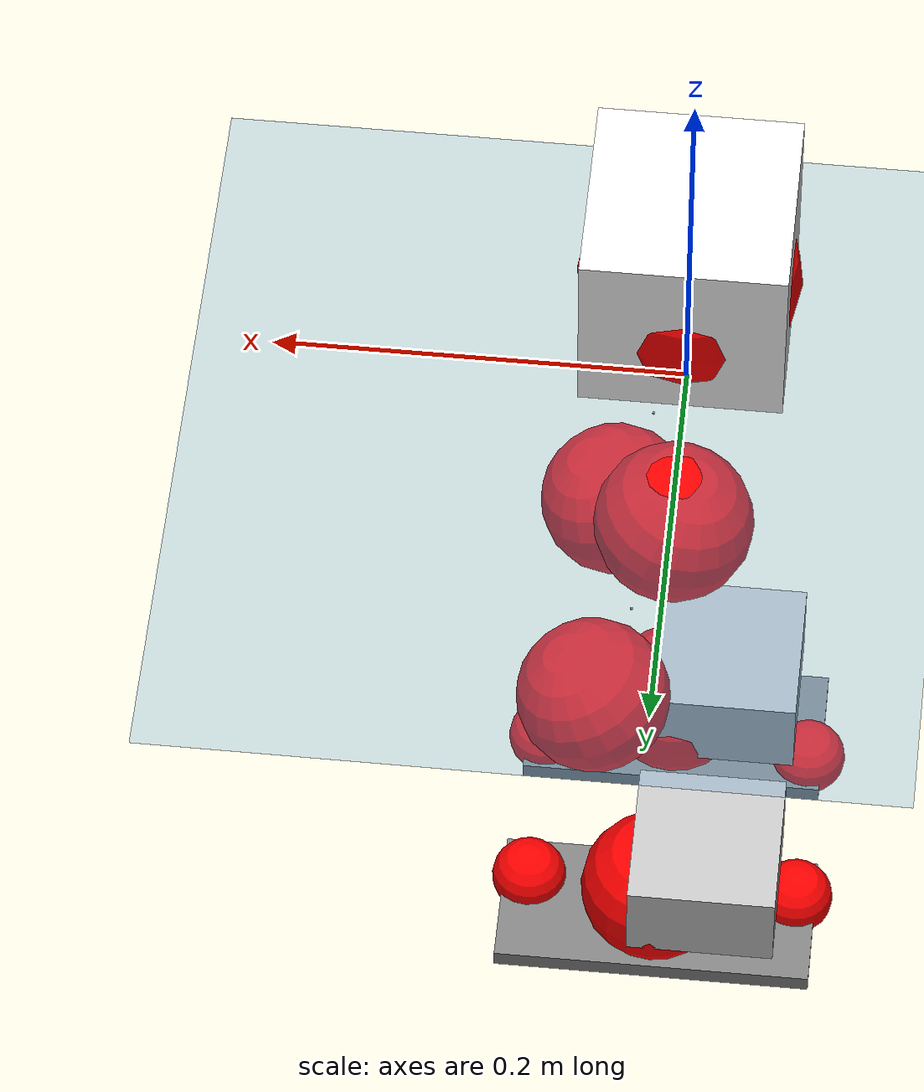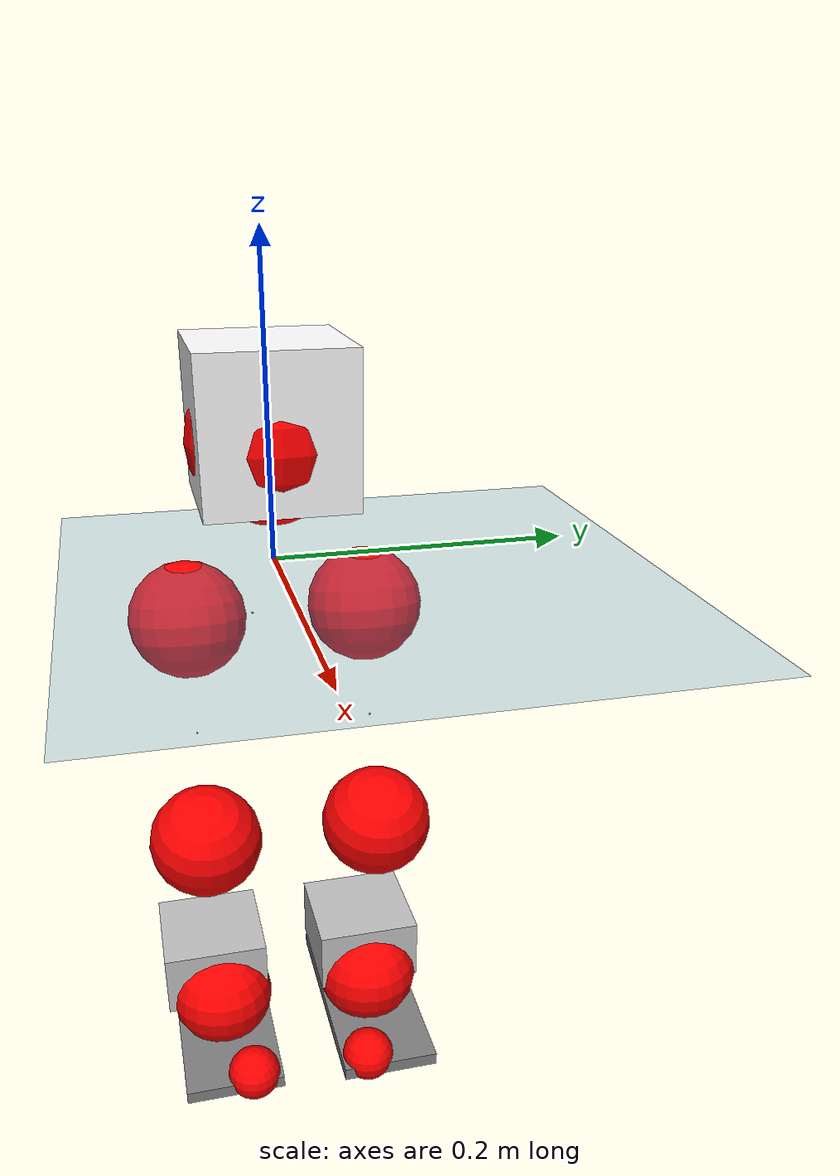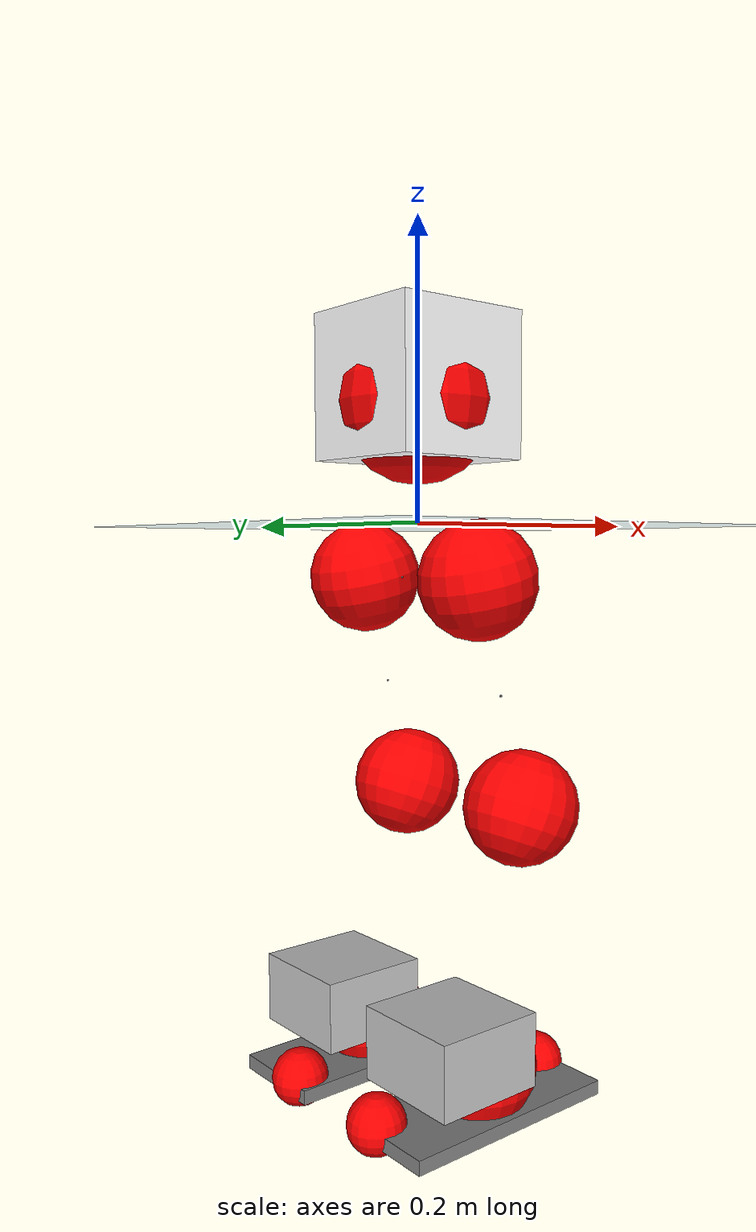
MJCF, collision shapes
<mujoco model="pi_12dof_release_v1">
  <compiler angle="radian" assetdir="assets" balanceinertia="true" inertiafromgeom="false"/>

  <option timestep="0.005" density="1.2" viscosity="2e-05"/>

  <size nkey="1"/>

  <visual>
    <quality shadowsize="8192"/>
    <map shadowclip="0.5"/>
  </visual>

  <default>
    <default class="/">
      <joint armature="0.01" damping="0.01" frictionloss="0.01"/>
      <geom contype="0" conaffinity="0" group="1" solref="-1000 -80"/>
      <site size="0.01 0.005 0.005" group="5"/>
      <general forcelimited="true" biastype="affine" gainprm="20" biasprm="0 -20 -0.5"/>
      <default class="foot">
        <geom size="0.0845 0.036 0.005" type="box" condim="6" group="4" priority="1" friction="0.9 0.2 0.2" solimp="0.015 1 0.005"/>
      </default>
      <default class="reward_collision_sphere">
        <geom group="5" rgba="1 0 0 1"/>
      </default>
    </default>
  </default>

  <asset>
    <texture type="skybox" colorspace="auto" name="//unnamed_texture_0" builtin="gradient" rgb1="0.95 0.95 0.95" rgb2="0.95 0.95 0.95" width="100" height="600"/>
    <texture type="2d" colorspace="auto" name="texplane" builtin="checker" rgb1="0.345 0.575 0.748" rgb2="0.345 0.575 0.748" markrgb="1 1 1" width="512" height="512"/>
    <material name="MatPlane" class="/" texture="texplane" texuniform="true" texrepeat="2 2" specular="0.9"/>
    <mesh name="baselink_1" class="/" file="baselink_1.STL"/>
    <mesh name="r_hip_pitch_link" class="/" file="r_hip_pitch_link.STL"/>
    <mesh name="r_hip_roll_link" class="/" file="r_hip_roll_link.STL"/>
    <mesh name="r_thigh_link" class="/" file="r_thigh_link.STL"/>
    <mesh name="r_calf_link" class="/" file="r_calf_link.STL"/>
    <mesh name="r_ankle_pitch_link" class="/" file="r_ankle_pitch_link.STL"/>
    <mesh name="r_ankle_roll_link" class="/" file="r_ankle_roll_link.STL"/>
    <mesh name="l_hip_pitch_link" class="/" file="l_hip_pitch_link.STL"/>
    <mesh name="l_hip_roll_link" class="/" file="l_hip_roll_link.STL"/>
    <mesh name="l_thigh_link" class="/" file="l_thigh_link.STL"/>
    <mesh name="l_calf_link" class="/" file="l_calf_link.STL"/>
    <mesh name="l_ankle_pitch_link" class="/" file="l_ankle_pitch_link.STL"/>
    <mesh name="l_ankle_roll_link" class="/" file="l_ankle_roll_link.STL"/>
  </asset>

  <worldbody>
    <geom name="floor" class="/" size="100 100 0.125" type="plane" group="0" material="MatPlane"/>
    <light name="toplight_shadow" class="/" pos="0 0 5" dir="0.0990148 0.0990148 -0.990148" type="directional" ambient="0.04 0.04 0.04" diffuse="0.55 0.55 0.55" specular="0.12 0.12 0.12"/>
    <light name="toplight_fill" class="/" pos="0 0 5" dir="0.0990148 0.0990148 -0.990148" type="directional" castshadow="false" ambient="0.04 0.04 0.04" diffuse="0.3 0.3 0.3" specular="0.08 0.08 0.08"/>
    <body name="trunk" pos="-0.000132344 0.000803333 4.00809e-05" quat="1 0.000238087 -8.80112e-05 0.000303325">
      <inertial pos="0.00328144 -0.001642 0.0445579" quat="0.692523 0.0073569 0.0104739 0.721282" mass="1.93229" diaginertia="0.0112335 0.00218646 0.00719639"/>
      <joint name="//unnamed_joint_0" type="free"/>
      <geom name="//unnamed_geom_1" class="/" type="mesh" density="0" rgba="1 1 1 1" mesh="baselink_1"/>
      <geom name="//unnamed_geom_2" class="/" size="0.0484353 0.0484353 0.0484353" pos="0 0 0.089492" type="box" rgba="1 1 1 1"/>
      <geom name="//unnamed_geom_3" class="reward_collision_sphere" size="0.0532789" pos="0 0 0.0783055"/>
      <site name="imu" class="/" pos="-0.000244707 -0.0015102 -0.00151874" size="0.00968707"/>
      <camera name="track" class="/" pos="0 -1.50959 0" quat="0.707107 0.707107 0 0" mode="trackcom"/>
      <camera name="ego_camera" class="/" pos="0.0774506 0 0.201357" quat="-0.5 -0.5 0.5 0.5"/>
      <body name="r_hip_pitch_link" pos="0.000521487 -0.0166314 -0.0365395" quat="0.992193 -3.31971e-05 -0.124715 -3.08658e-05">
        <inertial pos="0.000898387 -0.0425555 -0.000199286" quat="-0.0199531 0.710155 -0.0316816 0.703049" mass="0.337948" diaginertia="0.000128668 2.44052e-05 0.000146966"/>
        <joint name="r_hip_pitch_joint" class="/" pos="0 0 0" axis="0.00432545 -0.999985 0.00322949" range="-1.76574 1.2317" armature="0.00979038" damping="0.0160482" frictionloss="0.00998113"/>
        <geom name="//unnamed_geom_4" class="/" type="mesh" density="0" rgba="0.75294 0.75294 0.75294 1" mesh="r_hip_pitch_link"/>
        <geom name="//unnamed_geom_5" class="/" size="0.000484353 0.000484353 0.000484353" type="box" rgba="0.75294 0.75294 0.75294 1"/>
        <body name="r_hip_roll_link" pos="0.000196339 -0.0429603 -0.000585577" quat="1 -0.000383209 0.00010704 0.000221733">
          <inertial pos="-0.00081594 0.000805712 -0.0685761" quat="0.706883 -0.0808299 -0.0839461 0.697665" mass="0.350063" diaginertia="0.00039245 6.90886e-05 0.000225724"/>
          <joint name="r_hip_roll_joint" class="/" pos="0 0 0" axis="-0.999993 0.00242209 -0.00267751" range="-0.121223 0.49434" armature="0.00947715" damping="0.00691372" frictionloss="0.00967614"/>
          <geom name="//unnamed_geom_6" class="/" type="mesh" density="0" rgba="0.75294 0.75294 0.75294 1" mesh="r_hip_roll_link"/>
          <geom name="//unnamed_geom_7" class="/" size="0.000484353 0.000484353 0.000484353" type="box" rgba="0.75294 0.75294 0.75294 1"/>
          <geom name="//unnamed_geom_8" class="reward_collision_sphere" size="0.0387483"/>
          <body name="r_thigh_link" pos="-8.7789e-05 -0.00110272 -0.0772094" quat="1 5.01062e-05 -5.79619e-05 -0.000206154">
            <inertial pos="0.000228955 0.00126038 -0.0529551" quat="0.738052 0.674742 -0.0012093 2.44293e-05" mass="0.103275" diaginertia="0.000148581 2.36057e-05 0.000102516"/>
            <joint name="r_thigh_joint" class="/" pos="0 0 0" axis="-0.00182118 0.000749241 -0.999998" range="-0.319143 0.574864" armature="0.00961518" damping="0" frictionloss="0.0100713"/>
            <geom name="//unnamed_geom_9" class="/" type="mesh" density="0" rgba="0.75294 0.75294 0.75294 1" mesh="r_thigh_link"/>
            <geom name="//unnamed_geom_10" class="/" size="0.000484353 0.000484353 0.000484353" type="box" rgba="0.75294 0.75294 0.75294 1"/>
            <body name="r_calf_link" pos="-0.00151942 -0.000743535 -0.077785" quat="0.947625 -1.44098e-05 0.319385 0.000210222">
              <inertial pos="-0.000943249 -0.00142709 -0.0776367" quat="0.99998 -0.00297058 0.00191704 0.00518256" mass="0.74424" diaginertia="0.00417287 0.000857835 0.000304858"/>
              <joint name="r_calf_joint" class="/" pos="0 0 0" axis="-0.00808204 -0.999967 0.000827589" range="-1.63214 0.637824" armature="0.00969574" damping="0.0136672" frictionloss="0.00990378"/>
              <geom name="//unnamed_geom_11" class="/" type="mesh" density="0" rgba="0.75294 0.75294 0.75294 1" mesh="r_calf_link"/>
              <geom name="//unnamed_geom_12" class="/" size="0.000484353 0.000484353 0.000484353" type="box" rgba="0.75294 0.75294 0.75294 1"/>
              <geom name="//unnamed_geom_13" class="reward_collision_sphere" size="0.0387483"/>
              <body name="r_ankle_pitch_link" pos="0.00109759 0.00109476 -0.157462" quat="0.980072 -7.16932e-05 -0.198642 -4.14028e-06">
                <inertial pos="0.00417319 0.00362001 0.000402318" quat="0.00302788 0.70738 -0.00352358 0.706818" mass="0.160194" diaginertia="0.000365198 5.43693e-05 0.000210024"/>
                <joint name="r_ankle_pitch_joint" class="/" pos="0 0 0" axis="9.59363e-05 -0.999999 0.00105255" stiffness="0.000467585" range="-1.28282 0.489901" armature="0.00966587" damping="0.00995521" frictionloss="0.00981482"/>
                <geom name="//unnamed_geom_14" class="/" type="mesh" density="0" rgba="0.75294 0.75294 0.75294 1" mesh="r_ankle_pitch_link"/>
                <geom name="//unnamed_geom_15" class="/" size="0.0377796 0.0387483 0.0242177" type="box" rgba="0.75294 0.75294 0.75294 1"/>
                <body name="r_ankle_roll_link" pos="0.0788407 0.00352495 0.000675914" quat="1 7.61832e-05 -0.000133575 -2.12176e-05">
                  <inertial pos="-0.0237285 -0.00079185 -0.0163101" quat="0.558975 0.432208 0.436104 0.557276" mass="0.478134" diaginertia="0.00135523 0.000253851 0.000508642"/>
                  <joint name="r_ankle_roll_joint" class="/" pos="0 0 0" axis="-0.999982 0.00578825 -0.00184983" range="-0.128004 0.145696" armature="0.00974378" damping="0.00275852" frictionloss="0.00965226"/>
                  <geom name="//unnamed_geom_16" class="/" type="mesh" density="0" rgba="0.75294 0.75294 0.75294 1" mesh="r_ankle_roll_link"/>
                  <geom name="//unnamed_geom_17" class="/" type="mesh" rgba="0.75294 0.75294 0.75294 1" mesh="r_ankle_roll_link"/>
                  <geom name="right_foot" class="foot" size="0.0782842 0.0361184 0.00471324" pos="-0.0526664 0 -0.0492206"/>
                  <geom name="//unnamed_geom_19" class="reward_collision_sphere" size="0.0387483" pos="-0.0516337 0 -0.022373"/>
                  <geom name="//unnamed_geom_20" class="reward_collision_sphere" size="0.0193741" pos="0.0154901 0.0150959 -0.044746"/>
                  <geom name="//unnamed_geom_21" class="reward_collision_sphere" size="0.0193741" pos="-0.123921 0.0150959 -0.044746"/>
                  <site name="right_foot" class="foot" pos="-0.0526664 0 -0.0492206" size="0.00968707"/>
                </body>
              </body>
            </body>
          </body>
        </body>
      </body>
      <body name="l_hip_pitch_link" pos="4.97826e-05 0.0165149 -0.0364843" quat="0.992203 0.000132442 -0.124635 -0.000224196">
        <inertial pos="0.00147089 0.0402727 -0.00115739" quat="-0.0375898 0.704418 0.0294983 0.708176" mass="0.351133" diaginertia="0.000150715 2.61922e-05 0.000175469"/>
        <joint name="l_hip_pitch_joint" class="/" pos="0 0 0" axis="0.000320186 1 -0.000808484" range="-1.24107 1.75474" armature="0.00980728" damping="0.0112868" frictionloss="0.00958586"/>
        <geom name="//unnamed_geom_22" class="/" type="mesh" density="0" rgba="0.75294 0.75294 0.75294 1" mesh="l_hip_pitch_link"/>
        <geom name="//unnamed_geom_23" class="/" size="0.000484353 0.000484353 0.000484353" type="box" rgba="0.75294 0.75294 0.75294 1"/>
        <body name="l_hip_roll_link" pos="0.000324063 0.0433941 -0.000410804" quat="1 0.00021523 2.54892e-05 0.000254398">
          <inertial pos="-0.000703615 0.00122305 -0.0683726" quat="0.698377 -0.0733562 -0.0780729 0.707667" mass="0.348781" diaginertia="0.000395472 6.71494e-05 0.000225559"/>
          <joint name="l_hip_roll_joint" class="/" pos="0 0 0" axis="-0.999987 0.00270361 -0.00423679" range="-0.499192 0.11505" armature="0.0101671" damping="0.00390963" frictionloss="0.010138"/>
          <geom name="//unnamed_geom_24" class="/" type="mesh" density="0" rgba="0.75294 0.75294 0.75294 1" mesh="l_hip_roll_link"/>
          <geom name="//unnamed_geom_25" class="/" size="0.000484353 0.000484353 0.000484353" type="box" rgba="0.75294 0.75294 0.75294 1"/>
          <geom name="//unnamed_geom_26" class="reward_collision_sphere" size="0.0387483"/>
          <body name="l_thigh_link" pos="0.00013775 -0.00069485 -0.0780141" quat="1 -3.95181e-05 -0.000278019 0.000310089">
            <inertial pos="0.000441486 -0.00170338 -0.0539709" quat="0.675793 0.737091 -0.000390815 0.00111365" mass="0.103087" diaginertia="0.000148865 2.35035e-05 0.000102574"/>
            <joint name="l_thigh_joint" class="/" pos="0 0 0" axis="-0.000490193 7.97573e-05 -1" range="-0.602382 0.303581" armature="0.0101599" damping="0.00115551" frictionloss="0.00961309"/>
            <geom name="//unnamed_geom_27" class="/" type="mesh" density="0" rgba="0.75294 0.75294 0.75294 1" mesh="l_thigh_link"/>
            <geom name="//unnamed_geom_28" class="/" size="0.000484353 0.000484353 0.000484353" type="box" rgba="0.75294 0.75294 0.75294 1"/>
            <body name="l_calf_link" pos="-0.00125342 0.000185795 -0.0786127" quat="0.947666 -0.000620446 0.319263 0.000308203">
              <inertial pos="0.000413844 0.00265382 -0.0784878" quat="0.999983 0.00350285 -0.00109855 0.00453384" mass="0.746709" diaginertia="0.00417887 0.000866438 0.000314348"/>
              <joint name="l_calf_joint" class="/" pos="0 0 0" axis="0.00136068 0.999996 -0.00249188" range="-0.649627 1.65595" armature="0.0101342" damping="0.0089362" frictionloss="0.00974894"/>
              <geom name="//unnamed_geom_29" class="/" type="mesh" density="0" rgba="0.75294 0.75294 0.75294 1" mesh="l_calf_link"/>
              <geom name="//unnamed_geom_30" class="/" size="0.000484353 0.000484353 0.000484353" type="box" rgba="0.75294 0.75294 0.75294 1"/>
              <geom name="//unnamed_geom_31" class="reward_collision_sphere" size="0.0387483"/>
              <body name="l_ankle_pitch_link" pos="0.0013252 0.000704766 -0.156133" quat="0.980086 -5.645e-05 -0.198572 0.000235393">
                <inertial pos="0.00521424 -0.000208979 -0.000657661" quat="-0.00122246 0.706364 0.000563279 0.707847" mass="0.160782" diaginertia="0.000362547 5.45655e-05 0.000213147"/>
                <joint name="l_ankle_pitch_joint" class="/" pos="0 0 0" axis="-1.08074e-05 1 -0.000300245" stiffness="0.000786964" range="-0.517202 1.30356" armature="0.00955106" damping="0.00671067" frictionloss="0.010121"/>
                <geom name="//unnamed_geom_32" class="/" type="mesh" density="0" rgba="0.75294 0.75294 0.75294 1" mesh="l_ankle_pitch_link"/>
                <geom name="//unnamed_geom_33" class="/" size="0.0377796 0.0387483 0.0242177" type="box" rgba="0.75294 0.75294 0.75294 1"/>
                <body name="l_ankle_roll_link" pos="0.0774942 0.000553495 -0.000775338" quat="1 8.45747e-06 -1.26908e-05 -8.49493e-06">
                  <inertial pos="-0.0240863 -0.000364366 -0.0157877" quat="0.559782 0.430784 0.433847 0.559327" mass="0.466952" diaginertia="0.0013314 0.000250085 0.000496386"/>
                  <joint name="l_ankle_roll_joint" class="/" pos="0 0 0" axis="-0.999999 0.000180702 0.00134763" range="-0.135194 0.155807" armature="0.0094581" damping="0.00209913" frictionloss="0.00987108"/>
                  <geom name="//unnamed_geom_34" class="/" type="mesh" density="0" rgba="0.75294 0.75294 0.75294 1" mesh="l_ankle_roll_link"/>
                  <geom name="//unnamed_geom_35" class="/" type="mesh" rgba="0.75294 0.75294 0.75294 1" mesh="l_ankle_roll_link"/>
                  <geom name="left_foot" class="foot" size="0.081565 0.0356904 0.00490802" pos="-0.0526664 0 -0.0492206"/>
                  <geom name="//unnamed_geom_37" class="reward_collision_sphere" size="0.0387483" pos="-0.0516337 0 -0.022373"/>
                  <geom name="//unnamed_geom_38" class="reward_collision_sphere" size="0.0193741" pos="0.0154901 -0.0150959 -0.044746"/>
                  <geom name="//unnamed_geom_39" class="reward_collision_sphere" size="0.0193741" pos="-0.123921 -0.0150959 -0.044746"/>
                  <site name="left_foot" class="foot" pos="-0.0526664 0 -0.0492206" size="0.00968707"/>
                </body>
              </body>
            </body>
          </body>
        </body>
      </body>
    </body>
  </worldbody>

  <contact>
    <pair class="/" geom1="floor" geom2="right_foot" name="//unnamed_contact_1"/>
    <pair class="/" geom1="floor" geom2="left_foot" name="//unnamed_contact_0"/>
  </contact>

  <actuator>
    <general name="r_hip_pitch_joint" class="/" joint="r_hip_pitch_joint" forcerange="-20.8218 20.8218" gainprm="19.8235" biasprm="0 -19.8235 -0.467586"/>
    <general name="r_hip_roll_joint" class="/" joint="r_hip_roll_joint" forcerange="-21.2026 21.2026" gainprm="19.8235" biasprm="0 -19.8235 -0.467586"/>
    <general name="r_thigh_joint" class="/" joint="r_thigh_joint" forcerange="-20.327 20.327" gainprm="19.8235" biasprm="0 -19.8235 -0.467586"/>
    <general name="r_calf_joint" class="/" joint="r_calf_joint" forcerange="-20.1419 20.1419" gainprm="19.8235" biasprm="0 -19.8235 -0.467586"/>
    <general name="r_ankle_pitch_joint" class="/" joint="r_ankle_pitch_joint" forcerange="-20.3888 20.3888" gainprm="19.8235" biasprm="0 -19.8235 -0.467586"/>
    <general name="r_ankle_roll_joint" class="/" joint="r_ankle_roll_joint" forcerange="-19.9582 19.9582" gainprm="19.8235" biasprm="0 -19.8235 -0.467586"/>
    <general name="l_hip_pitch_joint" class="/" joint="l_hip_pitch_joint" forcerange="-19.7041 19.7041" gainprm="19.8235" biasprm="0 -19.8235 -0.467586"/>
    <general name="l_hip_roll_joint" class="/" joint="l_hip_roll_joint" forcerange="-20.3915 20.3915" gainprm="19.8235" biasprm="0 -19.8235 -0.467586"/>
    <general name="l_thigh_joint" class="/" joint="l_thigh_joint" forcerange="-20.117 20.117" gainprm="19.8235" biasprm="0 -19.8235 -0.467586"/>
    <general name="l_calf_joint" class="/" joint="l_calf_joint" forcerange="-21.0093 21.0093" gainprm="19.8235" biasprm="0 -19.8235 -0.467586"/>
    <general name="l_ankle_pitch_joint" class="/" joint="l_ankle_pitch_joint" forcerange="-20.5338 20.5338" gainprm="19.8235" biasprm="0 -19.8235 -0.467586"/>
    <general name="l_ankle_roll_joint" class="/" joint="l_ankle_roll_joint" forcerange="-20.7755 20.7755" gainprm="19.8235" biasprm="0 -19.8235 -0.467586"/>
  </actuator>

  <sensor>
    <gyro site="imu" name="imu_angular_velocity"/>
    <velocimeter site="imu" name="imu_linear_velocity"/>
    <framelinvel objtype="site" objname="left_foot" name="left_foot_global_linear_velocity"/>
    <framelinvel objtype="site" objname="right_foot" name="right_foot_global_linear_velocity"/>
  </sensor>

  <keyframe>
    <key name="home" qpos="0 0 0.291 1 0 0 0 0.4 0 0 -0.8 0.4 0 -0.4 0 0 0.8 -0.4 0"/>
  </keyframe>
</mujoco>
